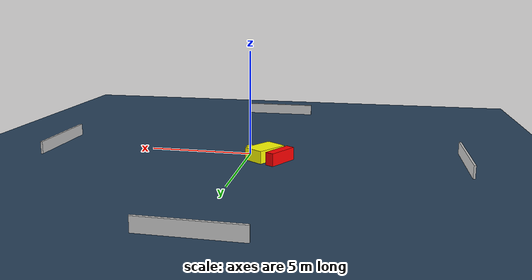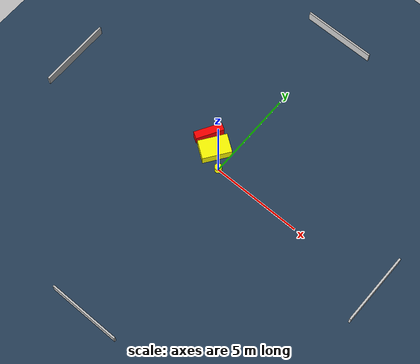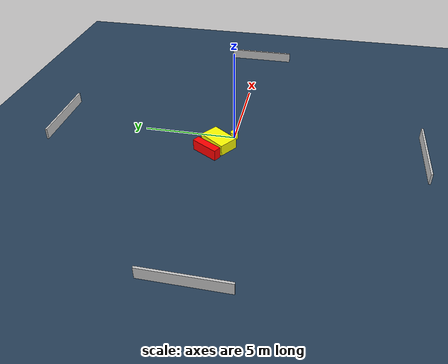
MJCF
<?xml version="1.0" ?>
<mujoco model="generated_environment">
  <option timestep="0.01" integrator="RK4" cone="elliptic"/>
  <default>
    <geom density="1"/>
  </default>
  <asset>
    <texture builtin="gradient" height="3072" name="skybox" rgb1="0.3 0.5 0.7" rgb2="0 0 0" type="skybox" width="512"/>
    <texture builtin="checker" height="300" name="groundplane" rgb1="0.2 0.3 0.4" rgb2="0.1 0.2 0.3" type="2d" width="300"/>
    <material name="groundplane" reflectance="0.2" texrepeat="5 5" texture="groundplane"/>
  </asset>
  <worldbody>
    <light dir="0 0 -1" directional="true" pos="0 0 1.5"/>
    <geom condim="3" friction="0.5 0.005 0.001" material="groundplane" name="floor" pos="0 0 0" size="0 0 0.05" type="plane"/>
    <body name="walls">
      <geom name="wall_1" condim="4" pos="-10.0 0.0 0.3" rgba="0.800000011920929 0.800000011920929 0.800000011920929 1.0" size="0.05 2.0 0.3" type="box"/>
      <geom name="wall_2" condim="4" pos="10.0 0.0 0.3" rgba="0.800000011920929 0.800000011920929 0.800000011920929 1.0" size="0.05 2.0 0.3" type="box"/>
      <geom name="wall_3" condim="4" pos="0.0 -10.0 0.3" rgba="0.800000011920929 0.800000011920929 0.800000011920929 1.0" size="2.0 0.05 0.3" type="box"/>
      <geom name="wall_4" condim="4" pos="0.0 10.0 0.3" rgba="0.800000011920929 0.800000011920929 0.800000011920929 1.0" size="2.0 0.05 0.3" type="box"/>
    </body>
    <body name="robot">
      <joint name="joint_x" type="slide" pos="0 0 0" axis="1 0 0"/>
      <joint name="joint_y" type="slide" pos="0 0 0" axis="0 1 0"/>
      <geom name="robot" type="cylinder" pos="0.0 0.0 0.2" size="0.2 0.2 0.0" mass="5.0" friction="1.0 0.005 0.0001" condim="4" rgba="1.0 1.0 0.0 1.0"/>
    </body>
    <body name="obstacle_1_movable">
      <geom name="obstacle_1_movable" condim="4" pos="-0.8252581315988745 0.6912547274762783 0.3" euler="0 0 144.73630709571742" friction="0.0 0.005 0.001" rgba="1.0 1.0 0.0 1.0" size="0.5220229773226266 0.7935882142826833 0.3" type="box" mass="0.1"/>
      <joint type="free"/>
    </body>
    <body name="obstacle_2_static">
      <geom name="obstacle_2_static" condim="4" pos="-1.6172329680456783 1.1547187684796492 0.3" euler="0 0 149.67574063920551" friction="0.0 0.005 0.001" rgba="1.0 0.0 0.0 1.0" size="0.208264161523027 0.771432041315401 0.3" type="box"/>
    </body>
  </worldbody>
  <actuator>
    <motor name="actuator_x" joint="joint_x" gear="1" ctrlrange="-1 1"/>
    <motor name="actuator_y" joint="joint_y" gear="1" ctrlrange="-1 1"/>
  </actuator>
</mujoco>
